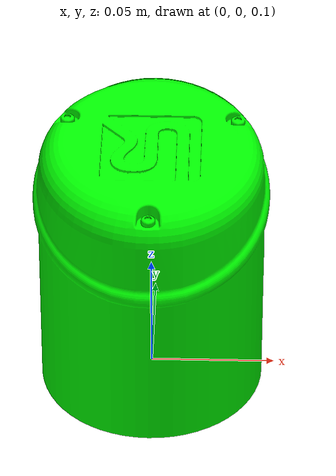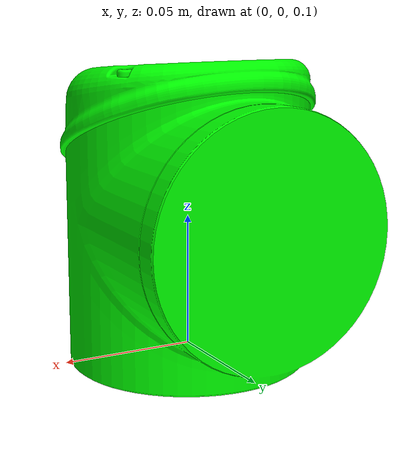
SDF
<?xml version="1.0"?>
<sdf version="1.7" xmlns:drake="drake.mit.edu">
  <model name="ur3e">
    <link name="ur_shoulder_link">
      <visual name="ur_shoulder_link">
        <pose>0.0 0.0 0.152 0 0 0</pose>
          <geometry>
            <mesh>
              <uri>shoulder.obj</uri>
              <scale>1.0 1.0 1.0</scale>
            </mesh>
          </geometry>
          <material> <!-- Use referenced .mtl file with a different name. -->
            <diffuse>0.0 1.0 0.0 1</diffuse>
          </material>
      </visual>
      <inertial>
        <pose>0 0.0006 0.0004 0 0 0</pose>
        <mass>1.8</mass>
        <inertia>
          <ixx>0.0049</ixx>
          <ixy>0</ixy>
          <ixz>0</ixz>
          <iyy>0.0047</iyy>
          <iyz>0</iyz>
          <izz>0.0036</izz>
        </inertia>
      </inertial>
    </link>
  </model>
</sdf>
